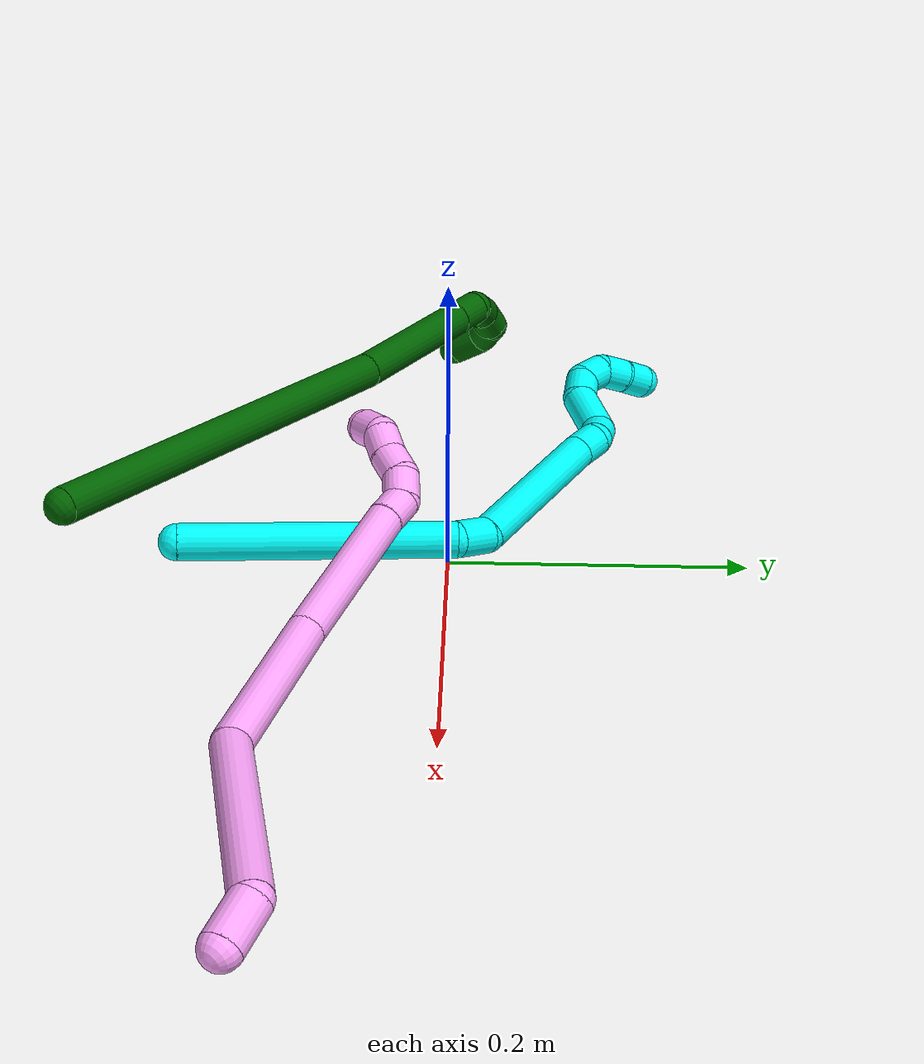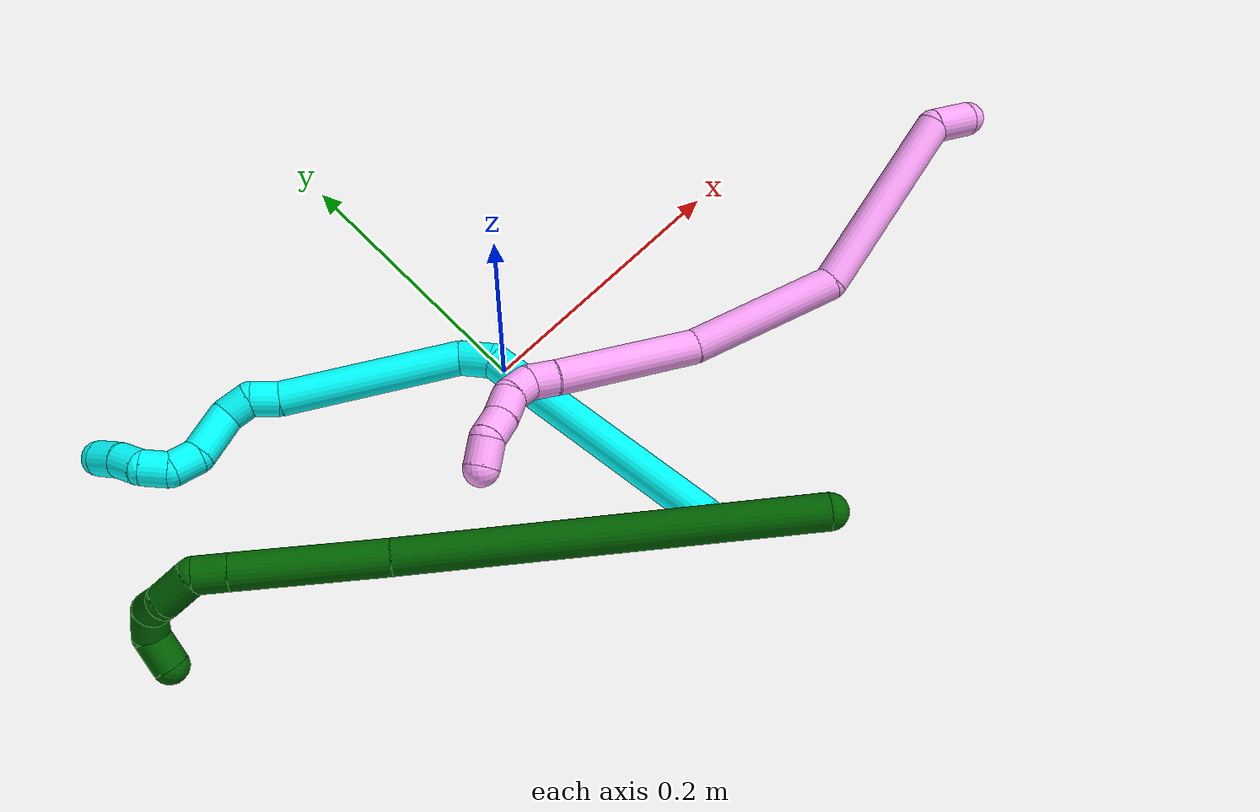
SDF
<sdf version="1.7">
 <world name="default">
  <model name="3">
   <static>0</static>
   <link name="3">
    <collision name="collision-cylinder-e_1_1_4">
     <pose>-0.062923 0.046232 0.050217 -0.744097 -0.744751 0.302512</pose>
     <geometry><cylinder><radius>0.0125</radius><length>0.185671</length></cylinder></geometry>
     <surface>
      <friction><ode><mu>1.16</mu><mu2>1.16</mu2><slip1>0</slip1><slip2>0</slip2></ode></friction>
      <contact><ode><kp>1e+06</kp><kd>1</kd><max_vel>0</max_vel><min_depth>0.001</min_depth></ode></contact>
     </surface>
    </collision>
    <visual name="visual-cylinder-e_1_1_4">
     <pose>-0.062923 0.046232 0.050217 -0.744097 -0.744751 0.302512</pose>
     <geometry><cylinder><radius>0.0125</radius><length>0.185671</length></cylinder></geometry>
     <material><ambient>0.003922 1 0.996078 1</ambient></material>
    </visual>
    <collision name="collision-cylinder-e_2_4_5">
     <pose>-0.13251 0.093816 0.110842 -0.129252 -0.56576 0.037618</pose>
     <geometry><cylinder><radius>0.0125</radius><length>0.024865</length></cylinder></geometry>
     <surface>
      <friction><ode><mu>1.16</mu><mu2>1.16</mu2><slip1>0</slip1><slip2>0</slip2></ode></friction>
      <contact><ode><kp>1e+06</kp><kd>1</kd><max_vel>0</max_vel><min_depth>0.001</min_depth></ode></contact>
     </surface>
    </collision>
    <visual name="visual-cylinder-e_2_4_5">
     <pose>-0.13251 0.093816 0.110842 -0.129252 -0.56576 0.037618</pose>
     <geometry><cylinder><radius>0.0125</radius><length>0.024865</length></cylinder></geometry>
     <material><ambient>0.003922 1 0.996078 1</ambient></material>
    </visual>
    <collision name="collision-cylinder-e_3_5_6">
     <pose>-0.146506 0.093132 0.185987 0.031457 -0.112718 -0.001775</pose>
     <geometry><cylinder><radius>0.0125</radius><length>0.130364</length></cylinder></geometry>
     <surface>
      <friction><ode><mu>1.16</mu><mu2>1.16</mu2><slip1>0</slip1><slip2>0</slip2></ode></friction>
      <contact><ode><kp>1e+06</kp><kd>1</kd><max_vel>0</max_vel><min_depth>0.001</min_depth></ode></contact>
     </surface>
    </collision>
    <visual name="visual-cylinder-e_3_5_6">
     <pose>-0.146506 0.093132 0.185987 0.031457 -0.112718 -0.001775</pose>
     <geometry><cylinder><radius>0.0125</radius><length>0.130364</length></cylinder></geometry>
     <material><ambient>0.003922 1 0.996078 1</ambient></material>
    </visual>
    <collision name="collision-cylinder-e_4_6_7">
     <pose>-0.155581 0.093027 0.260589 -0.193382 -0.171708 0.016695</pose>
     <geometry><cylinder><radius>0.0125</radius><length>0.020407</length></cylinder></geometry>
     <surface>
      <friction><ode><mu>1.16</mu><mu2>1.16</mu2><slip1>0</slip1><slip2>0</slip2></ode></friction>
      <contact><ode><kp>1e+06</kp><kd>1</kd><max_vel>0</max_vel><min_depth>0.001</min_depth></ode></contact>
     </surface>
    </collision>
    <visual name="visual-cylinder-e_4_6_7">
     <pose>-0.155581 0.093027 0.260589 -0.193382 -0.171708 0.016695</pose>
     <geometry><cylinder><radius>0.0125</radius><length>0.020407</length></cylinder></geometry>
     <material><ambient>0.003922 1 0.996078 1</ambient></material>
    </visual>
    <collision name="collision-cylinder-e_5_7_8">
     <pose>-0.15732 0.090866 0.279729 0.415621 0.00046 9.7e-05</pose>
     <geometry><cylinder><radius>0.0125</radius><length>0.020274</length></cylinder></geometry>
     <surface>
      <friction><ode><mu>1.16</mu><mu2>1.16</mu2><slip1>0</slip1><slip2>0</slip2></ode></friction>
      <contact><ode><kp>1e+06</kp><kd>1</kd><max_vel>0</max_vel><min_depth>0.001</min_depth></ode></contact>
     </surface>
    </collision>
    <visual name="visual-cylinder-e_5_7_8">
     <pose>-0.15732 0.090866 0.279729 0.415621 0.00046 9.7e-05</pose>
     <geometry><cylinder><radius>0.0125</radius><length>0.020274</length></cylinder></geometry>
     <material><ambient>0.003922 1 0.996078 1</ambient></material>
    </visual>
    <collision name="collision-cylinder-e_6_8_9">
     <pose>-0.145518 0.079703 0.30179 0.505072 0.67924 0.181837</pose>
     <geometry><cylinder><radius>0.0125</radius><length>0.03756</length></cylinder></geometry>
     <surface>
      <friction><ode><mu>1.16</mu><mu2>1.16</mu2><slip1>0</slip1><slip2>0</slip2></ode></friction>
      <contact><ode><kp>1e+06</kp><kd>1</kd><max_vel>0</max_vel><min_depth>0.001</min_depth></ode></contact>
     </surface>
    </collision>
    <visual name="visual-cylinder-e_6_8_9">
     <pose>-0.145518 0.079703 0.30179 0.505072 0.67924 0.181837</pose>
     <geometry><cylinder><radius>0.0125</radius><length>0.03756</length></cylinder></geometry>
     <material><ambient>0.003922 1 0.996078 1</ambient></material>
    </visual>
    <collision name="collision-cylinder-e_7_9_10">
     <pose>-0.130281 0.071685 0.324245 0.097701 0.340294 0.016799</pose>
     <geometry><cylinder><radius>0.0125</radius><length>0.02061</length></cylinder></geometry>
     <surface>
      <friction><ode><mu>1.16</mu><mu2>1.16</mu2><slip1>0</slip1><slip2>0</slip2></ode></friction>
      <contact><ode><kp>1e+06</kp><kd>1</kd><max_vel>0</max_vel><min_depth>0.001</min_depth></ode></contact>
     </surface>
    </collision>
    <visual name="visual-cylinder-e_7_9_10">
     <pose>-0.130281 0.071685 0.324245 0.097701 0.340294 0.016799</pose>
     <geometry><cylinder><radius>0.0125</radius><length>0.02061</length></cylinder></geometry>
     <material><ambient>0.003922 1 0.996078 1</ambient></material>
    </visual>
    <collision name="collision-cylinder-e_8_10_11">
     <pose>-0.129648 0.072994 0.343244 -0.23721 -0.284371 0.034114</pose>
     <geometry><cylinder><radius>0.0125</radius><length>0.020005</length></cylinder></geometry>
     <surface>
      <friction><ode><mu>1.16</mu><mu2>1.16</mu2><slip1>0</slip1><slip2>0</slip2></ode></friction>
      <contact><ode><kp>1e+06</kp><kd>1</kd><max_vel>0</max_vel><min_depth>0.001</min_depth></ode></contact>
     </surface>
    </collision>
    <visual name="visual-cylinder-e_8_10_11">
     <pose>-0.129648 0.072994 0.343244 -0.23721 -0.284371 0.034114</pose>
     <geometry><cylinder><radius>0.0125</radius><length>0.020005</length></cylinder></geometry>
     <material><ambient>0.003922 1 0.996078 1</ambient></material>
    </visual>
    <collision name="collision-cylinder-e_9_11_12">
     <pose>-0.140208 0.076297 0.358947 -0.162996 -0.876447 0.076514</pose>
     <geometry><cylinder><radius>0.0125</radius><length>0.020179</length></cylinder></geometry>
     <surface>
      <friction><ode><mu>1.16</mu><mu2>1.16</mu2><slip1>0</slip1><slip2>0</slip2></ode></friction>
      <contact><ode><kp>1e+06</kp><kd>1</kd><max_vel>0</max_vel><min_depth>0.001</min_depth></ode></contact>
     </surface>
    </collision>
    <visual name="visual-cylinder-e_9_11_12">
     <pose>-0.140208 0.076297 0.358947 -0.162996 -0.876447 0.076514</pose>
     <geometry><cylinder><radius>0.0125</radius><length>0.020179</length></cylinder></geometry>
     <material><ambient>0.003922 1 0.996078 1</ambient></material>
    </visual>
    <collision name="collision-cylinder-e_10_12_2">
     <pose>-0.155146 0.076704 0.372291 0.09166 -0.798203 -0.038678</pose>
     <geometry><cylinder><radius>0.0125</radius><length>0.020066</length></cylinder></geometry>
     <surface>
      <friction><ode><mu>1.16</mu><mu2>1.16</mu2><slip1>0</slip1><slip2>0</slip2></ode></friction>
      <contact><ode><kp>1e+06</kp><kd>1</kd><max_vel>0</max_vel><min_depth>0.001</min_depth></ode></contact>
     </surface>
    </collision>
    <visual name="visual-cylinder-e_10_12_2">
     <pose>-0.155146 0.076704 0.372291 0.09166 -0.798203 -0.038678</pose>
     <geometry><cylinder><radius>0.0125</radius><length>0.020066</length></cylinder></geometry>
     <material><ambient>0.003922 1 0.996078 1</ambient></material>
    </visual>
    <collision name="collision-sphere-2">
     <pose>-0.162331 0.076063 0.379264 0 -0 0</pose>
     <geometry><sphere><radius>0.0125</radius></sphere></geometry>
     <surface>
      <friction><ode><mu>1.16</mu><mu2>1.16</mu2><slip1>0</slip1><slip2>0</slip2></ode></friction>
      <contact><ode><kp>1e+06</kp><kd>1</kd><max_vel>0</max_vel><min_depth>0.001</min_depth></ode></contact>
     </surface>
    </collision>
    <visual name="visual-sphere-2">
     <pose>-0.162331 0.076063 0.379264 0 -0 0</pose>
     <geometry><sphere><radius>0.0125</radius></sphere></geometry>
     <material><ambient>0.003922 1 0.996078 1</ambient></material>
    </visual>
    <collision name="collision-sphere-12">
     <pose>-0.147961 0.077345 0.365317 0 -0 0</pose>
     <geometry><sphere><radius>0.0125</radius></sphere></geometry>
     <surface>
      <friction><ode><mu>1.16</mu><mu2>1.16</mu2><slip1>0</slip1><slip2>0</slip2></ode></friction>
      <contact><ode><kp>1e+06</kp><kd>1</kd><max_vel>0</max_vel><min_depth>0.001</min_depth></ode></contact>
     </surface>
    </collision>
    <visual name="visual-sphere-12">
     <pose>-0.147961 0.077345 0.365317 0 -0 0</pose>
     <geometry><sphere><radius>0.0125</radius></sphere></geometry>
     <material><ambient>0.003922 1 0.996078 1</ambient></material>
    </visual>
    <collision name="collision-sphere-11">
     <pose>-0.132454 0.07525 0.352576 0 -0 0</pose>
     <geometry><sphere><radius>0.0125</radius></sphere></geometry>
     <surface>
      <friction><ode><mu>1.16</mu><mu2>1.16</mu2><slip1>0</slip1><slip2>0</slip2></ode></friction>
      <contact><ode><kp>1e+06</kp><kd>1</kd><max_vel>0</max_vel><min_depth>0.001</min_depth></ode></contact>
     </surface>
    </collision>
    <visual name="visual-sphere-11">
     <pose>-0.132454 0.07525 0.352576 0 -0 0</pose>
     <geometry><sphere><radius>0.0125</radius></sphere></geometry>
     <material><ambient>0.003922 1 0.996078 1</ambient></material>
    </visual>
    <collision name="collision-sphere-10">
     <pose>-0.126842 0.070738 0.333912 0 -0 0</pose>
     <geometry><sphere><radius>0.0125</radius></sphere></geometry>
     <surface>
      <friction><ode><mu>1.16</mu><mu2>1.16</mu2><slip1>0</slip1><slip2>0</slip2></ode></friction>
      <contact><ode><kp>1e+06</kp><kd>1</kd><max_vel>0</max_vel><min_depth>0.001</min_depth></ode></contact>
     </surface>
    </collision>
    <visual name="visual-sphere-10">
     <pose>-0.126842 0.070738 0.333912 0 -0 0</pose>
     <geometry><sphere><radius>0.0125</radius></sphere></geometry>
     <material><ambient>0.003922 1 0.996078 1</ambient></material>
    </visual>
    <collision name="collision-sphere-9">
     <pose>-0.13372 0.072633 0.314577 0 -0 0</pose>
     <geometry><sphere><radius>0.0125</radius></sphere></geometry>
     <surface>
      <friction><ode><mu>1.16</mu><mu2>1.16</mu2><slip1>0</slip1><slip2>0</slip2></ode></friction>
      <contact><ode><kp>1e+06</kp><kd>1</kd><max_vel>0</max_vel><min_depth>0.001</min_depth></ode></contact>
     </surface>
    </collision>
    <visual name="visual-sphere-9">
     <pose>-0.13372 0.072633 0.314577 0 -0 0</pose>
     <geometry><sphere><radius>0.0125</radius></sphere></geometry>
     <material><ambient>0.003922 1 0.996078 1</ambient></material>
    </visual>
    <collision name="collision-sphere-4">
     <pose>-0.125845 0.092463 0.100435 0 -0 0</pose>
     <geometry><sphere><radius>0.0125</radius></sphere></geometry>
     <surface>
      <friction><ode><mu>1.16</mu><mu2>1.16</mu2><slip1>0</slip1><slip2>0</slip2></ode></friction>
      <contact><ode><kp>1e+06</kp><kd>1</kd><max_vel>0</max_vel><min_depth>0.001</min_depth></ode></contact>
     </surface>
    </collision>
    <visual name="visual-sphere-4">
     <pose>-0.125845 0.092463 0.100435 0 -0 0</pose>
     <geometry><sphere><radius>0.0125</radius></sphere></geometry>
     <material><ambient>0.003922 1 0.996078 1</ambient></material>
    </visual>
    <collision name="collision-sphere-1">
     <geometry><sphere><radius>0.0125</radius></sphere></geometry>
     <surface>
      <friction><ode><mu>1.16</mu><mu2>1.16</mu2><slip1>0</slip1><slip2>0</slip2></ode></friction>
      <contact><ode><kp>1e+06</kp><kd>1</kd><max_vel>0</max_vel><min_depth>0.001</min_depth></ode></contact>
     </surface>
    </collision>
    <visual name="visual-sphere-1">
     <geometry><sphere><radius>0.0125</radius></sphere></geometry>
     <material><ambient>0.003922 1 0.996078 1</ambient></material>
    </visual>
    <collision name="collision-sphere-8">
     <pose>-0.157316 0.086773 0.289003 0 -0 0</pose>
     <geometry><sphere><radius>0.0125</radius></sphere></geometry>
     <surface>
      <friction><ode><mu>1.16</mu><mu2>1.16</mu2><slip1>0</slip1><slip2>0</slip2></ode></friction>
      <contact><ode><kp>1e+06</kp><kd>1</kd><max_vel>0</max_vel><min_depth>0.001</min_depth></ode></contact>
     </surface>
    </collision>
    <visual name="visual-sphere-8">
     <pose>-0.157316 0.086773 0.289003 0 -0 0</pose>
     <geometry><sphere><radius>0.0125</radius></sphere></geometry>
     <material><ambient>0.003922 1 0.996078 1</ambient></material>
    </visual>
    <collision name="collision-sphere-5">
     <pose>-0.139175 0.095169 0.12125 0 -0 0</pose>
     <geometry><sphere><radius>0.0125</radius></sphere></geometry>
     <surface>
      <friction><ode><mu>1.16</mu><mu2>1.16</mu2><slip1>0</slip1><slip2>0</slip2></ode></friction>
      <contact><ode><kp>1e+06</kp><kd>1</kd><max_vel>0</max_vel><min_depth>0.001</min_depth></ode></contact>
     </surface>
    </collision>
    <visual name="visual-sphere-5">
     <pose>-0.139175 0.095169 0.12125 0 -0 0</pose>
     <geometry><sphere><radius>0.0125</radius></sphere></geometry>
     <material><ambient>0.003922 1 0.996078 1</ambient></material>
    </visual>
    <collision name="collision-sphere-6">
     <pose>-0.153838 0.091094 0.250723 0 -0 0</pose>
     <geometry><sphere><radius>0.0125</radius></sphere></geometry>
     <surface>
      <friction><ode><mu>1.16</mu><mu2>1.16</mu2><slip1>0</slip1><slip2>0</slip2></ode></friction>
      <contact><ode><kp>1e+06</kp><kd>1</kd><max_vel>0</max_vel><min_depth>0.001</min_depth></ode></contact>
     </surface>
    </collision>
    <visual name="visual-sphere-6">
     <pose>-0.153838 0.091094 0.250723 0 -0 0</pose>
     <geometry><sphere><radius>0.0125</radius></sphere></geometry>
     <material><ambient>0.003922 1 0.996078 1</ambient></material>
    </visual>
    <collision name="collision-sphere-7">
     <pose>-0.157325 0.094959 0.270455 0 -0 0</pose>
     <geometry><sphere><radius>0.0125</radius></sphere></geometry>
     <surface>
      <friction><ode><mu>1.16</mu><mu2>1.16</mu2><slip1>0</slip1><slip2>0</slip2></ode></friction>
      <contact><ode><kp>1e+06</kp><kd>1</kd><max_vel>0</max_vel><min_depth>0.001</min_depth></ode></contact>
     </surface>
    </collision>
    <visual name="visual-sphere-7">
     <pose>-0.157325 0.094959 0.270455 0 -0 0</pose>
     <geometry><sphere><radius>0.0125</radius></sphere></geometry>
     <material><ambient>0.003922 1 0.996078 1</ambient></material>
    </visual>
    <inertial>
     <pose>-0.114256 0.071616 0.173826 0 -0 0</pose>
     <mass>0.5</mass>
     <inertia>
      <ixx>0.000689</ixx>
      <ixy>0</ixy>
      <ixz>0</ixz>
      <iyy>0.000785</iyy>
      <iyz>0</iyz>
      <izz>0.000156</izz>
     </inertia>
    </inertial>
   </link>
   <pose>0.019625 -0.177976 0.024561 1.40674 -0.757741 -1.91466</pose>
  </model>
  <model name="4">
   <static>0</static>
   <link name="4">
    <collision name="collision-cylinder-e_1_1_4">
     <pose>-0.001791 0.001784 -0.015042 -3.02352 -0.117703 1.56769</pose>
     <geometry><cylinder><radius>0.0125</radius><length>0.030507</length></cylinder></geometry>
     <surface>
      <friction><ode><mu>1.16</mu><mu2>1.16</mu2><slip1>0</slip1><slip2>0</slip2></ode></friction>
      <contact><ode><kp>1e+06</kp><kd>1</kd><max_vel>0</max_vel><min_depth>0.001</min_depth></ode></contact>
     </surface>
    </collision>
    <visual name="visual-cylinder-e_1_1_4">
     <pose>-0.001791 0.001784 -0.015042 -3.02352 -0.117703 1.56769</pose>
     <geometry><cylinder><radius>0.0125</radius><length>0.030507</length></cylinder></geometry>
     <material><ambient>1 0.65098 0.996078 1</ambient></material>
    </visual>
    <collision name="collision-cylinder-e_2_4_5">
     <pose>-0.055281 -0.00456 -0.082456 2.9876 -0.772979 -2.76689</pose>
     <geometry><cylinder><radius>0.0125</radius><length>0.148075</length></cylinder></geometry>
     <surface>
      <friction><ode><mu>1.16</mu><mu2>1.16</mu2><slip1>0</slip1><slip2>0</slip2></ode></friction>
      <contact><ode><kp>1e+06</kp><kd>1</kd><max_vel>0</max_vel><min_depth>0.001</min_depth></ode></contact>
     </surface>
    </collision>
    <visual name="visual-cylinder-e_2_4_5">
     <pose>-0.055281 -0.00456 -0.082456 2.9876 -0.772979 -2.76689</pose>
     <geometry><cylinder><radius>0.0125</radius><length>0.148075</length></cylinder></geometry>
     <material><ambient>1 0.65098 0.996078 1</ambient></material>
    </visual>
    <collision name="collision-cylinder-e_3_5_6">
     <pose>-0.121695 -0.015375 -0.189874 3.09284 -0.260943 -2.77418</pose>
     <geometry><cylinder><radius>0.0125</radius><length>0.114086</length></cylinder></geometry>
     <surface>
      <friction><ode><mu>1.16</mu><mu2>1.16</mu2><slip1>0</slip1><slip2>0</slip2></ode></friction>
      <contact><ode><kp>1e+06</kp><kd>1</kd><max_vel>0</max_vel><min_depth>0.001</min_depth></ode></contact>
     </surface>
    </collision>
    <visual name="visual-cylinder-e_3_5_6">
     <pose>-0.121695 -0.015375 -0.189874 3.09284 -0.260943 -2.77418</pose>
     <geometry><cylinder><radius>0.0125</radius><length>0.114086</length></cylinder></geometry>
     <material><ambient>1 0.65098 0.996078 1</ambient></material>
    </visual>
    <collision name="collision-cylinder-e_4_6_7">
     <pose>-0.1412 -0.011169 -0.297753 -3.01188 -0.089617 1.20848</pose>
     <geometry><cylinder><radius>0.0125</radius><length>0.10699</length></cylinder></geometry>
     <surface>
      <friction><ode><mu>1.16</mu><mu2>1.16</mu2><slip1>0</slip1><slip2>0</slip2></ode></friction>
      <contact><ode><kp>1e+06</kp><kd>1</kd><max_vel>0</max_vel><min_depth>0.001</min_depth></ode></contact>
     </surface>
    </collision>
    <visual name="visual-cylinder-e_4_6_7">
     <pose>-0.1412 -0.011169 -0.297753 -3.01188 -0.089617 1.20848</pose>
     <geometry><cylinder><radius>0.0125</radius><length>0.10699</length></cylinder></geometry>
     <material><ambient>1 0.65098 0.996078 1</ambient></material>
    </visual>
    <collision name="collision-cylinder-e_5_7_8">
     <pose>-0.146252 -0.003692 -0.360656 -3.08351 -0.026203 0.847461</pose>
     <geometry><cylinder><radius>0.0125</radius><length>0.020182</length></cylinder></geometry>
     <surface>
      <friction><ode><mu>1.16</mu><mu2>1.16</mu2><slip1>0</slip1><slip2>0</slip2></ode></friction>
      <contact><ode><kp>1e+06</kp><kd>1</kd><max_vel>0</max_vel><min_depth>0.001</min_depth></ode></contact>
     </surface>
    </collision>
    <visual name="visual-cylinder-e_5_7_8">
     <pose>-0.146252 -0.003692 -0.360656 -3.08351 -0.026203 0.847461</pose>
     <geometry><cylinder><radius>0.0125</radius><length>0.020182</length></cylinder></geometry>
     <material><ambient>1 0.65098 0.996078 1</ambient></material>
    </visual>
    <collision name="collision-cylinder-e_6_8_9">
     <pose>-0.151152 0.00122 -0.378503 -2.63391 -0.480266 1.51299</pose>
     <geometry><cylinder><radius>0.0125</radius><length>0.020068</length></cylinder></geometry>
     <surface>
      <friction><ode><mu>1.16</mu><mu2>1.16</mu2><slip1>0</slip1><slip2>0</slip2></ode></friction>
      <contact><ode><kp>1e+06</kp><kd>1</kd><max_vel>0</max_vel><min_depth>0.001</min_depth></ode></contact>
     </surface>
    </collision>
    <visual name="visual-cylinder-e_6_8_9">
     <pose>-0.151152 0.00122 -0.378503 -2.63391 -0.480266 1.51299</pose>
     <geometry><cylinder><radius>0.0125</radius><length>0.020068</length></cylinder></geometry>
     <material><ambient>1 0.65098 0.996078 1</ambient></material>
    </visual>
    <collision name="collision-cylinder-e_7_9_10">
     <pose>-0.163789 0.008594 -0.391505 -2.61355 -0.923377 2.1462</pose>
     <geometry><cylinder><radius>0.0125</radius><length>0.020063</length></cylinder></geometry>
     <surface>
      <friction><ode><mu>1.16</mu><mu2>1.16</mu2><slip1>0</slip1><slip2>0</slip2></ode></friction>
      <contact><ode><kp>1e+06</kp><kd>1</kd><max_vel>0</max_vel><min_depth>0.001</min_depth></ode></contact>
     </surface>
    </collision>
    <visual name="visual-cylinder-e_7_9_10">
     <pose>-0.163789 0.008594 -0.391505 -2.61355 -0.923377 2.1462</pose>
     <geometry><cylinder><radius>0.0125</radius><length>0.020063</length></cylinder></geometry>
     <material><ambient>1 0.65098 0.996078 1</ambient></material>
    </visual>
    <collision name="collision-cylinder-e_8_10_11">
     <pose>-0.178619 0.015489 -0.402947 -2.58739 -0.751384 1.89211</pose>
     <geometry><cylinder><radius>0.0125</radius><length>0.020005</length></cylinder></geometry>
     <surface>
      <friction><ode><mu>1.16</mu><mu2>1.16</mu2><slip1>0</slip1><slip2>0</slip2></ode></friction>
      <contact><ode><kp>1e+06</kp><kd>1</kd><max_vel>0</max_vel><min_depth>0.001</min_depth></ode></contact>
     </surface>
    </collision>
    <visual name="visual-cylinder-e_8_10_11">
     <pose>-0.178619 0.015489 -0.402947 -2.58739 -0.751384 1.89211</pose>
     <geometry><cylinder><radius>0.0125</radius><length>0.020005</length></cylinder></geometry>
     <material><ambient>1 0.65098 0.996078 1</ambient></material>
    </visual>
    <collision name="collision-cylinder-e_9_11_2">
     <pose>-0.194679 0.018277 -0.412891 2.86496 -1.17328 -2.72871</pose>
     <geometry><cylinder><radius>0.0125</radius><length>0.020025</length></cylinder></geometry>
     <surface>
      <friction><ode><mu>1.16</mu><mu2>1.16</mu2><slip1>0</slip1><slip2>0</slip2></ode></friction>
      <contact><ode><kp>1e+06</kp><kd>1</kd><max_vel>0</max_vel><min_depth>0.001</min_depth></ode></contact>
     </surface>
    </collision>
    <visual name="visual-cylinder-e_9_11_2">
     <pose>-0.194679 0.018277 -0.412891 2.86496 -1.17328 -2.72871</pose>
     <geometry><cylinder><radius>0.0125</radius><length>0.020025</length></cylinder></geometry>
     <material><ambient>1 0.65098 0.996078 1</ambient></material>
    </visual>
    <collision name="collision-sphere-2">
     <pose>-0.203911 0.017219 -0.41662 0 -0 0</pose>
     <geometry><sphere><radius>0.0125</radius></sphere></geometry>
     <surface>
      <friction><ode><mu>1.16</mu><mu2>1.16</mu2><slip1>0</slip1><slip2>0</slip2></ode></friction>
      <contact><ode><kp>1e+06</kp><kd>1</kd><max_vel>0</max_vel><min_depth>0.001</min_depth></ode></contact>
     </surface>
    </collision>
    <visual name="visual-sphere-2">
     <pose>-0.203911 0.017219 -0.41662 0 -0 0</pose>
     <geometry><sphere><radius>0.0125</radius></sphere></geometry>
     <material><ambient>1 0.65098 0.996078 1</ambient></material>
    </visual>
    <collision name="collision-sphere-11">
     <pose>-0.185447 0.019336 -0.409162 0 -0 0</pose>
     <geometry><sphere><radius>0.0125</radius></sphere></geometry>
     <surface>
      <friction><ode><mu>1.16</mu><mu2>1.16</mu2><slip1>0</slip1><slip2>0</slip2></ode></friction>
      <contact><ode><kp>1e+06</kp><kd>1</kd><max_vel>0</max_vel><min_depth>0.001</min_depth></ode></contact>
     </surface>
    </collision>
    <visual name="visual-sphere-11">
     <pose>-0.185447 0.019336 -0.409162 0 -0 0</pose>
     <geometry><sphere><radius>0.0125</radius></sphere></geometry>
     <material><ambient>1 0.65098 0.996078 1</ambient></material>
    </visual>
    <collision name="collision-sphere-10">
     <pose>-0.171791 0.011643 -0.396732 0 -0 0</pose>
     <geometry><sphere><radius>0.0125</radius></sphere></geometry>
     <surface>
      <friction><ode><mu>1.16</mu><mu2>1.16</mu2><slip1>0</slip1><slip2>0</slip2></ode></friction>
      <contact><ode><kp>1e+06</kp><kd>1</kd><max_vel>0</max_vel><min_depth>0.001</min_depth></ode></contact>
     </surface>
    </collision>
    <visual name="visual-sphere-10">
     <pose>-0.171791 0.011643 -0.396732 0 -0 0</pose>
     <geometry><sphere><radius>0.0125</radius></sphere></geometry>
     <material><ambient>1 0.65098 0.996078 1</ambient></material>
    </visual>
    <collision name="collision-sphere-9">
     <pose>-0.155788 0.005546 -0.386279 0 -0 0</pose>
     <geometry><sphere><radius>0.0125</radius></sphere></geometry>
     <surface>
      <friction><ode><mu>1.16</mu><mu2>1.16</mu2><slip1>0</slip1><slip2>0</slip2></ode></friction>
      <contact><ode><kp>1e+06</kp><kd>1</kd><max_vel>0</max_vel><min_depth>0.001</min_depth></ode></contact>
     </surface>
    </collision>
    <visual name="visual-sphere-9">
     <pose>-0.155788 0.005546 -0.386279 0 -0 0</pose>
     <geometry><sphere><radius>0.0125</radius></sphere></geometry>
     <material><ambient>1 0.65098 0.996078 1</ambient></material>
    </visual>
    <collision name="collision-sphere-4">
     <pose>-0.003582 0.003569 -0.030085 0 -0 0</pose>
     <geometry><sphere><radius>0.0125</radius></sphere></geometry>
     <surface>
      <friction><ode><mu>1.16</mu><mu2>1.16</mu2><slip1>0</slip1><slip2>0</slip2></ode></friction>
      <contact><ode><kp>1e+06</kp><kd>1</kd><max_vel>0</max_vel><min_depth>0.001</min_depth></ode></contact>
     </surface>
    </collision>
    <visual name="visual-sphere-4">
     <pose>-0.003582 0.003569 -0.030085 0 -0 0</pose>
     <geometry><sphere><radius>0.0125</radius></sphere></geometry>
     <material><ambient>1 0.65098 0.996078 1</ambient></material>
    </visual>
    <collision name="collision-sphere-1">
     <geometry><sphere><radius>0.0125</radius></sphere></geometry>
     <surface>
      <friction><ode><mu>1.16</mu><mu2>1.16</mu2><slip1>0</slip1><slip2>0</slip2></ode></friction>
      <contact><ode><kp>1e+06</kp><kd>1</kd><max_vel>0</max_vel><min_depth>0.001</min_depth></ode></contact>
     </surface>
    </collision>
    <visual name="visual-sphere-1">
     <geometry><sphere><radius>0.0125</radius></sphere></geometry>
     <material><ambient>1 0.65098 0.996078 1</ambient></material>
    </visual>
    <collision name="collision-sphere-8">
     <pose>-0.146516 -0.003106 -0.370726 0 -0 0</pose>
     <geometry><sphere><radius>0.0125</radius></sphere></geometry>
     <surface>
      <friction><ode><mu>1.16</mu><mu2>1.16</mu2><slip1>0</slip1><slip2>0</slip2></ode></friction>
      <contact><ode><kp>1e+06</kp><kd>1</kd><max_vel>0</max_vel><min_depth>0.001</min_depth></ode></contact>
     </surface>
    </collision>
    <visual name="visual-sphere-8">
     <pose>-0.146516 -0.003106 -0.370726 0 -0 0</pose>
     <geometry><sphere><radius>0.0125</radius></sphere></geometry>
     <material><ambient>1 0.65098 0.996078 1</ambient></material>
    </visual>
    <collision name="collision-sphere-5">
     <pose>-0.106979 -0.01269 -0.134828 0 -0 0</pose>
     <geometry><sphere><radius>0.0125</radius></sphere></geometry>
     <surface>
      <friction><ode><mu>1.16</mu><mu2>1.16</mu2><slip1>0</slip1><slip2>0</slip2></ode></friction>
      <contact><ode><kp>1e+06</kp><kd>1</kd><max_vel>0</max_vel><min_depth>0.001</min_depth></ode></contact>
     </surface>
    </collision>
    <visual name="visual-sphere-5">
     <pose>-0.106979 -0.01269 -0.134828 0 -0 0</pose>
     <geometry><sphere><radius>0.0125</radius></sphere></geometry>
     <material><ambient>1 0.65098 0.996078 1</ambient></material>
    </visual>
    <collision name="collision-sphere-6">
     <pose>-0.136412 -0.018061 -0.24492 0 -0 0</pose>
     <geometry><sphere><radius>0.0125</radius></sphere></geometry>
     <surface>
      <friction><ode><mu>1.16</mu><mu2>1.16</mu2><slip1>0</slip1><slip2>0</slip2></ode></friction>
      <contact><ode><kp>1e+06</kp><kd>1</kd><max_vel>0</max_vel><min_depth>0.001</min_depth></ode></contact>
     </surface>
    </collision>
    <visual name="visual-sphere-6">
     <pose>-0.136412 -0.018061 -0.24492 0 -0 0</pose>
     <geometry><sphere><radius>0.0125</radius></sphere></geometry>
     <material><ambient>1 0.65098 0.996078 1</ambient></material>
    </visual>
    <collision name="collision-sphere-7">
     <pose>-0.145987 -0.004277 -0.350586 0 -0 0</pose>
     <geometry><sphere><radius>0.0125</radius></sphere></geometry>
     <surface>
      <friction><ode><mu>1.16</mu><mu2>1.16</mu2><slip1>0</slip1><slip2>0</slip2></ode></friction>
      <contact><ode><kp>1e+06</kp><kd>1</kd><max_vel>0</max_vel><min_depth>0.001</min_depth></ode></contact>
     </surface>
    </collision>
    <visual name="visual-sphere-7">
     <pose>-0.145987 -0.004277 -0.350586 0 -0 0</pose>
     <geometry><sphere><radius>0.0125</radius></sphere></geometry>
     <material><ambient>1 0.65098 0.996078 1</ambient></material>
    </visual>
    <inertial>
     <pose>-0.107947 -0.005543 -0.210491 0 -0 0</pose>
     <mass>0.5</mass>
     <inertia>
      <ixx>-0.000289</ixx>
      <ixy>0</ixy>
      <ixz>0</ixz>
      <iyy>0.000342</iyy>
      <iyz>0</iyz>
      <izz>0.000228</izz>
     </inertia>
    </inertial>
   </link>
   <pose>0.38689 -0.098923 0.021355 1.69179 -0.12661 1.01117</pose>
  </model>
  <model name="6">
   <static>0</static>
   <link name="6">
    <collision name="collision-cylinder-e_1_1_4">
     <pose>-0.066208 0.022869 -0.121579 -2.95567 -0.491398 2.42968</pose>
     <geometry><cylinder><radius>0.0125</radius><length>0.280627</length></cylinder></geometry>
     <surface>
      <friction><ode><mu>1.16</mu><mu2>1.16</mu2><slip1>0</slip1><slip2>0</slip2></ode></friction>
      <contact><ode><kp>1e+06</kp><kd>1</kd><max_vel>0</max_vel><min_depth>0.001</min_depth></ode></contact>
     </surface>
    </collision>
    <visual name="visual-cylinder-e_1_1_4">
     <pose>-0.066208 0.022869 -0.121579 -2.95567 -0.491398 2.42968</pose>
     <geometry><cylinder><radius>0.0125</radius><length>0.280627</length></cylinder></geometry>
     <material><ambient>0 0.392157 0.003922 1</ambient></material>
    </visual>
    <collision name="collision-cylinder-e_2_4_5">
     <pose>-0.152339 0.054896 -0.289469 -2.94637 -0.39935 2.24026</pose>
     <geometry><cylinder><radius>0.0125</radius><length>0.10248</length></cylinder></geometry>
     <surface>
      <friction><ode><mu>1.16</mu><mu2>1.16</mu2><slip1>0</slip1><slip2>0</slip2></ode></friction>
      <contact><ode><kp>1e+06</kp><kd>1</kd><max_vel>0</max_vel><min_depth>0.001</min_depth></ode></contact>
     </surface>
    </collision>
    <visual name="visual-cylinder-e_2_4_5">
     <pose>-0.152339 0.054896 -0.289469 -2.94637 -0.39935 2.24026</pose>
     <geometry><cylinder><radius>0.0125</radius><length>0.10248</length></cylinder></geometry>
     <material><ambient>0 0.392157 0.003922 1</ambient></material>
    </visual>
    <collision name="collision-cylinder-e_3_5_6">
     <pose>-0.176724 0.066111 -0.345958 -2.94209 -0.405769 2.23601</pose>
     <geometry><cylinder><radius>0.0125</radius><length>0.022604</length></cylinder></geometry>
     <surface>
      <friction><ode><mu>1.16</mu><mu2>1.16</mu2><slip1>0</slip1><slip2>0</slip2></ode></friction>
      <contact><ode><kp>1e+06</kp><kd>1</kd><max_vel>0</max_vel><min_depth>0.001</min_depth></ode></contact>
     </surface>
    </collision>
    <visual name="visual-cylinder-e_3_5_6">
     <pose>-0.176724 0.066111 -0.345958 -2.94209 -0.405769 2.23601</pose>
     <geometry><cylinder><radius>0.0125</radius><length>0.022604</length></cylinder></geometry>
     <material><ambient>0 0.392157 0.003922 1</ambient></material>
    </visual>
    <collision name="collision-cylinder-e_4_6_7">
     <pose>-0.192707 0.075117 -0.361878 -2.26139 -0.907006 1.60518</pose>
     <geometry><cylinder><radius>0.0125</radius><length>0.029257</length></cylinder></geometry>
     <surface>
      <friction><ode><mu>1.16</mu><mu2>1.16</mu2><slip1>0</slip1><slip2>0</slip2></ode></friction>
      <contact><ode><kp>1e+06</kp><kd>1</kd><max_vel>0</max_vel><min_depth>0.001</min_depth></ode></contact>
     </surface>
    </collision>
    <visual name="visual-cylinder-e_4_6_7">
     <pose>-0.192707 0.075117 -0.361878 -2.26139 -0.907006 1.60518</pose>
     <geometry><cylinder><radius>0.0125</radius><length>0.029257</length></cylinder></geometry>
     <material><ambient>0 0.392157 0.003922 1</ambient></material>
    </visual>
    <collision name="collision-cylinder-e_5_7_8">
     <pose>-0.214137 0.083237 -0.369693 -2.62705 -1.33478 2.49711</pose>
     <geometry><cylinder><radius>0.0125</radius><length>0.02038</length></cylinder></geometry>
     <surface>
      <friction><ode><mu>1.16</mu><mu2>1.16</mu2><slip1>0</slip1><slip2>0</slip2></ode></friction>
      <contact><ode><kp>1e+06</kp><kd>1</kd><max_vel>0</max_vel><min_depth>0.001</min_depth></ode></contact>
     </surface>
    </collision>
    <visual name="visual-cylinder-e_5_7_8">
     <pose>-0.214137 0.083237 -0.369693 -2.62705 -1.33478 2.49711</pose>
     <geometry><cylinder><radius>0.0125</radius><length>0.02038</length></cylinder></geometry>
     <material><ambient>0 0.392157 0.003922 1</ambient></material>
    </visual>
    <collision name="collision-cylinder-e_6_8_9">
     <pose>-0.231357 0.090735 -0.368926 -1.14862 -0.811942 0.542566</pose>
     <geometry><cylinder><radius>0.0125</radius><length>0.020156</length></cylinder></geometry>
     <surface>
      <friction><ode><mu>1.16</mu><mu2>1.16</mu2><slip1>0</slip1><slip2>0</slip2></ode></friction>
      <contact><ode><kp>1e+06</kp><kd>1</kd><max_vel>0</max_vel><min_depth>0.001</min_depth></ode></contact>
     </surface>
    </collision>
    <visual name="visual-cylinder-e_6_8_9">
     <pose>-0.231357 0.090735 -0.368926 -1.14862 -0.811942 0.542566</pose>
     <geometry><cylinder><radius>0.0125</radius><length>0.020156</length></cylinder></geometry>
     <material><ambient>0 0.392157 0.003922 1</ambient></material>
    </visual>
    <collision name="collision-cylinder-e_7_9_2">
     <pose>-0.241471 0.105214 -0.357384 -0.752957 -0.230738 0.091562</pose>
     <geometry><cylinder><radius>0.0125</radius><length>0.024497</length></cylinder></geometry>
     <surface>
      <friction><ode><mu>1.16</mu><mu2>1.16</mu2><slip1>0</slip1><slip2>0</slip2></ode></friction>
      <contact><ode><kp>1e+06</kp><kd>1</kd><max_vel>0</max_vel><min_depth>0.001</min_depth></ode></contact>
     </surface>
    </collision>
    <visual name="visual-cylinder-e_7_9_2">
     <pose>-0.241471 0.105214 -0.357384 -0.752957 -0.230738 0.091562</pose>
     <geometry><cylinder><radius>0.0125</radius><length>0.024497</length></cylinder></geometry>
     <material><ambient>0 0.392157 0.003922 1</ambient></material>
    </visual>
    <collision name="collision-sphere-2">
     <pose>-0.244272 0.113368 -0.348683 0 -0 0</pose>
     <geometry><sphere><radius>0.0125</radius></sphere></geometry>
     <surface>
      <friction><ode><mu>1.16</mu><mu2>1.16</mu2><slip1>0</slip1><slip2>0</slip2></ode></friction>
      <contact><ode><kp>1e+06</kp><kd>1</kd><max_vel>0</max_vel><min_depth>0.001</min_depth></ode></contact>
     </surface>
    </collision>
    <visual name="visual-sphere-2">
     <pose>-0.244272 0.113368 -0.348683 0 -0 0</pose>
     <geometry><sphere><radius>0.0125</radius></sphere></geometry>
     <material><ambient>0 0.392157 0.003922 1</ambient></material>
    </visual>
    <collision name="collision-sphere-9">
     <pose>-0.23867 0.097061 -0.366084 0 -0 0</pose>
     <geometry><sphere><radius>0.0125</radius></sphere></geometry>
     <surface>
      <friction><ode><mu>1.16</mu><mu2>1.16</mu2><slip1>0</slip1><slip2>0</slip2></ode></friction>
      <contact><ode><kp>1e+06</kp><kd>1</kd><max_vel>0</max_vel><min_depth>0.001</min_depth></ode></contact>
     </surface>
    </collision>
    <visual name="visual-sphere-9">
     <pose>-0.23867 0.097061 -0.366084 0 -0 0</pose>
     <geometry><sphere><radius>0.0125</radius></sphere></geometry>
     <material><ambient>0 0.392157 0.003922 1</ambient></material>
    </visual>
    <collision name="collision-sphere-4">
     <pose>-0.132416 0.045738 -0.243157 0 -0 0</pose>
     <geometry><sphere><radius>0.0125</radius></sphere></geometry>
     <surface>
      <friction><ode><mu>1.16</mu><mu2>1.16</mu2><slip1>0</slip1><slip2>0</slip2></ode></friction>
      <contact><ode><kp>1e+06</kp><kd>1</kd><max_vel>0</max_vel><min_depth>0.001</min_depth></ode></contact>
     </surface>
    </collision>
    <visual name="visual-sphere-4">
     <pose>-0.132416 0.045738 -0.243157 0 -0 0</pose>
     <geometry><sphere><radius>0.0125</radius></sphere></geometry>
     <material><ambient>0 0.392157 0.003922 1</ambient></material>
    </visual>
    <collision name="collision-sphere-1">
     <geometry><sphere><radius>0.0125</radius></sphere></geometry>
     <surface>
      <friction><ode><mu>1.16</mu><mu2>1.16</mu2><slip1>0</slip1><slip2>0</slip2></ode></friction>
      <contact><ode><kp>1e+06</kp><kd>1</kd><max_vel>0</max_vel><min_depth>0.001</min_depth></ode></contact>
     </surface>
    </collision>
    <visual name="visual-sphere-1">
     <geometry><sphere><radius>0.0125</radius></sphere></geometry>
     <material><ambient>0 0.392157 0.003922 1</ambient></material>
    </visual>
    <collision name="collision-sphere-8">
     <pose>-0.224044 0.08441 -0.371767 0 -0 0</pose>
     <geometry><sphere><radius>0.0125</radius></sphere></geometry>
     <surface>
      <friction><ode><mu>1.16</mu><mu2>1.16</mu2><slip1>0</slip1><slip2>0</slip2></ode></friction>
      <contact><ode><kp>1e+06</kp><kd>1</kd><max_vel>0</max_vel><min_depth>0.001</min_depth></ode></contact>
     </surface>
    </collision>
    <visual name="visual-sphere-8">
     <pose>-0.224044 0.08441 -0.371767 0 -0 0</pose>
     <geometry><sphere><radius>0.0125</radius></sphere></geometry>
     <material><ambient>0 0.392157 0.003922 1</ambient></material>
    </visual>
    <collision name="collision-sphere-5">
     <pose>-0.172263 0.064053 -0.33578 0 -0 0</pose>
     <geometry><sphere><radius>0.0125</radius></sphere></geometry>
     <surface>
      <friction><ode><mu>1.16</mu><mu2>1.16</mu2><slip1>0</slip1><slip2>0</slip2></ode></friction>
      <contact><ode><kp>1e+06</kp><kd>1</kd><max_vel>0</max_vel><min_depth>0.001</min_depth></ode></contact>
     </surface>
    </collision>
    <visual name="visual-sphere-5">
     <pose>-0.172263 0.064053 -0.33578 0 -0 0</pose>
     <geometry><sphere><radius>0.0125</radius></sphere></geometry>
     <material><ambient>0 0.392157 0.003922 1</ambient></material>
    </visual>
    <collision name="collision-sphere-6">
     <pose>-0.181185 0.068169 -0.356136 0 -0 0</pose>
     <geometry><sphere><radius>0.0125</radius></sphere></geometry>
     <surface>
      <friction><ode><mu>1.16</mu><mu2>1.16</mu2><slip1>0</slip1><slip2>0</slip2></ode></friction>
      <contact><ode><kp>1e+06</kp><kd>1</kd><max_vel>0</max_vel><min_depth>0.001</min_depth></ode></contact>
     </surface>
    </collision>
    <visual name="visual-sphere-6">
     <pose>-0.181185 0.068169 -0.356136 0 -0 0</pose>
     <geometry><sphere><radius>0.0125</radius></sphere></geometry>
     <material><ambient>0 0.392157 0.003922 1</ambient></material>
    </visual>
    <collision name="collision-sphere-7">
     <pose>-0.20423 0.082065 -0.367619 0 -0 0</pose>
     <geometry><sphere><radius>0.0125</radius></sphere></geometry>
     <surface>
      <friction><ode><mu>1.16</mu><mu2>1.16</mu2><slip1>0</slip1><slip2>0</slip2></ode></friction>
      <contact><ode><kp>1e+06</kp><kd>1</kd><max_vel>0</max_vel><min_depth>0.001</min_depth></ode></contact>
     </surface>
    </collision>
    <visual name="visual-sphere-7">
     <pose>-0.20423 0.082065 -0.367619 0 -0 0</pose>
     <geometry><sphere><radius>0.0125</radius></sphere></geometry>
     <material><ambient>0 0.392157 0.003922 1</ambient></material>
    </visual>
    <inertial>
     <pose>-0.117533 0.043676 -0.211831 0 -0 0</pose>
     <mass>0.5</mass>
     <inertia>
      <ixx>-0.000169</ixx>
      <ixy>0</ixy>
      <ixz>0</ixz>
      <iyy>0.002702</iyy>
      <iyz>0</iyz>
      <izz>0.000567</izz>
     </inertia>
    </inertial>
   </link>
   <pose>0.063359 -0.23829 0.077179 3.04573 -1.12177 -0.751821</pose>
  </model>
 </world>
</sdf>
